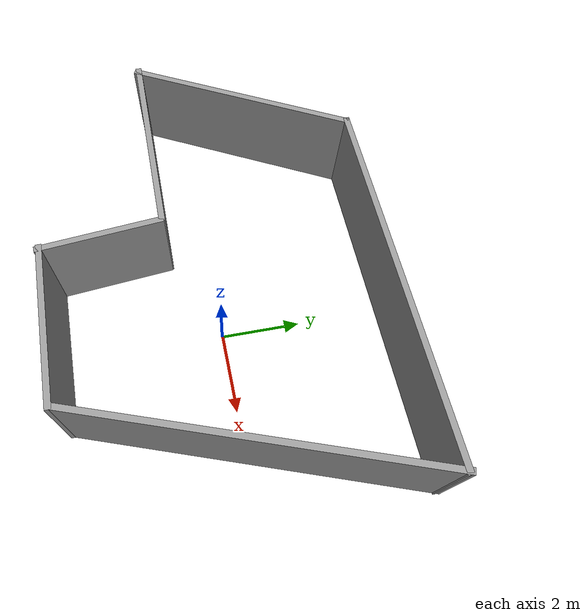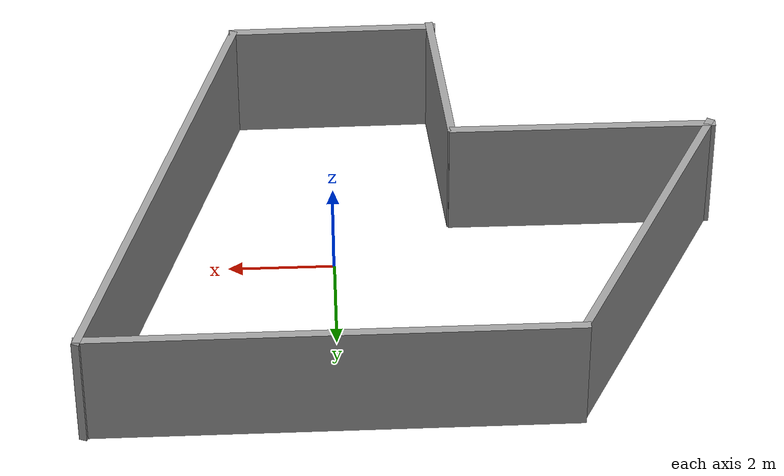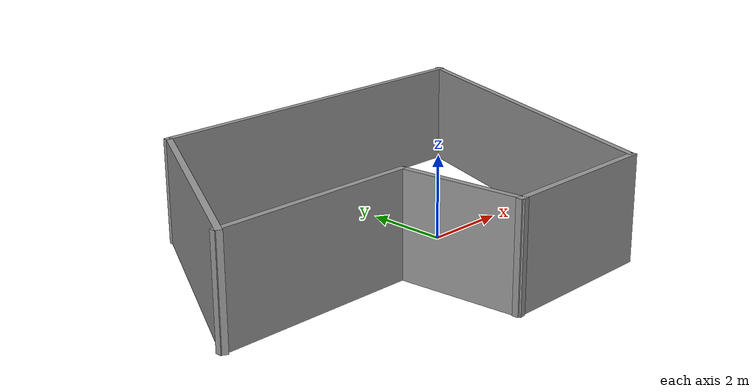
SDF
<?xml version='1.0'?>
<sdf version='1.6'>
  <model name='Untitled'>
    <pose frame=''>-1.24149 0.094104 0 0 -0 0</pose>
    <link name='Wall_10'>
      <collision name='Wall_10_Collision'>
        <geometry>
          <box>
            <size>3.98142 0.15 2.5</size>
          </box>
        </geometry>
        <pose frame=''>0 0 1.25 0 -0 0</pose>
      </collision>
      <visual name='Wall_10_Visual'>
        <pose frame=''>0 0 1.25 0 -0 0</pose>
        <geometry>
          <box>
            <size>3.98142 0.15 2.5</size>
          </box>
        </geometry>
        <material>
          <script>
            <uri>file://media/materials/scripts/gazebo.material</uri>
            <name>Gazebo/Grey</name>
          </script>
          <ambient>1 1 1 1</ambient>
        </material>
      </visual>
      <pose frame=''>1.14833 -4.05193 0 0 0 -3.13241</pose>
    </link>
    <link name='Wall_11'>
      <collision name='Wall_11_Collision'>
        <geometry>
          <box>
            <size>3.10025 0.15 2.5</size>
          </box>
        </geometry>
        <pose frame=''>0 0 1.25 0 -0 0</pose>
      </collision>
      <visual name='Wall_11_Visual'>
        <pose frame=''>0 0 1.25 0 -0 0</pose>
        <geometry>
          <box>
            <size>3.10025 0.15 2.5</size>
          </box>
        </geometry>
        <material>
          <script>
            <uri>file://media/materials/scripts/gazebo.material</uri>
            <name>Gazebo/Grey</name>
          </script>
          <ambient>1 1 1 1</ambient>
        </material>
      </visual>
      <pose frame=''>-0.872839 -2.6363 0 0 -0 1.66633</pose>
    </link>
    <link name='Wall_12'>
      <collision name='Wall_12_Collision'>
        <geometry>
          <box>
            <size>5 0.15 2.5</size>
          </box>
        </geometry>
        <pose frame=''>0 0 1.25 0 -0 0</pose>
      </collision>
      <visual name='Wall_12_Visual'>
        <pose frame=''>0 0 1.25 0 -0 0</pose>
        <geometry>
          <box>
            <size>5 0.15 2.5</size>
          </box>
        </geometry>
        <material>
          <script>
            <uri>file://media/materials/scripts/gazebo.material</uri>
            <name>Gazebo/Grey</name>
          </script>
          <ambient>1 1 1 1</ambient>
        </material>
      </visual>
      <pose frame=''>-3.47373 -1.13273 0 0 -0 3.14159</pose>
    </link>
    <link name='Wall_13'>
      <collision name='Wall_13_Collision'>
        <geometry>
          <box>
            <size>5.96589 0.15 2.5</size>
          </box>
        </geometry>
        <pose frame=''>0 0 1.25 0 -0 0</pose>
      </collision>
      <visual name='Wall_13_Visual'>
        <pose frame=''>0 0 1.25 0 -0 0</pose>
        <geometry>
          <box>
            <size>5.96589 0.15 2.5</size>
          </box>
        </geometry>
        <material>
          <script>
            <uri>file://media/materials/scripts/gazebo.material</uri>
            <name>Gazebo/Grey</name>
          </script>
          <ambient>1 1 1 1</ambient>
        </material>
      </visual>
      <pose frame=''>-4.51569 1.4088 0 0 -0 1.08884</pose>
    </link>
    <link name='Wall_8'>
      <collision name='Wall_8_Collision'>
        <geometry>
          <box>
            <size>9.19669 0.15 2.5</size>
          </box>
        </geometry>
        <pose frame=''>0 0 1.25 0 -0 0</pose>
      </collision>
      <visual name='Wall_8_Visual'>
        <pose frame=''>0 0 1.25 0 -0 0</pose>
        <geometry>
          <box>
            <size>9.19669 0.15 2.5</size>
          </box>
        </geometry>
        <material>
          <script>
            <uri>file://media/materials/scripts/gazebo.material</uri>
            <name>Gazebo/Grey</name>
          </script>
          <ambient>1 1 1 1</ambient>
        </material>
      </visual>
      <pose frame=''>1.35522 4.03826 0 0 -0 0.003889</pose>
    </link>
    <link name='Wall_9'>
      <collision name='Wall_9_Collision'>
        <geometry>
          <box>
            <size>8.71572 0.15 2.5</size>
          </box>
        </geometry>
        <pose frame=''>0 0 1.25 0 -0 0</pose>
      </collision>
      <visual name='Wall_9_Visual'>
        <pose frame=''>0 0 1.25 0 -0 0</pose>
        <geometry>
          <box>
            <size>8.71572 0.15 2.5</size>
          </box>
        </geometry>
        <material>
          <script>
            <uri>file://media/materials/scripts/gazebo.material</uri>
            <name>Gazebo/Grey</name>
          </script>
          <ambient>1 1 1 1</ambient>
        </material>
      </visual>
      <pose frame=''>4.4711 0.045936 0 0 0 -1.90557</pose>
    </link>
    <static>1</static>
  </model>
</sdf>
